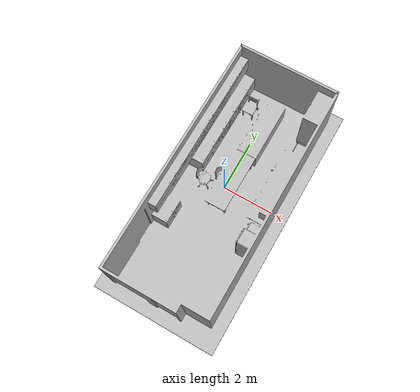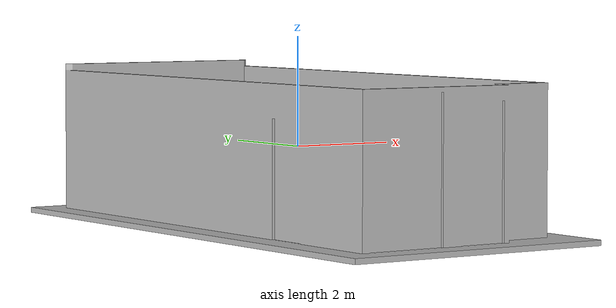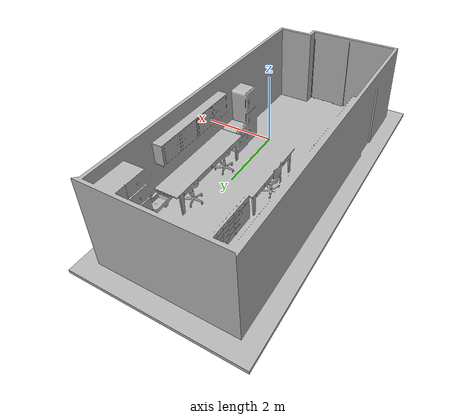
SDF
<?xml version='1.0'?>
<sdf version='1.7'>
  <model name='room912new'>
    <model name='room912'>
      <static>1</static>
      <link name='link'>
        <collision name='collision'>
          <geometry>
            <mesh>
              <uri>model://room912/meshes/room912.stl</uri>
            </mesh>
          </geometry>
        </collision>
        <visual name='visual'>
          <geometry>
            <mesh>
              <uri>model://room912/meshes/room912.stl</uri>
            </mesh>
          </geometry>
        </visual>
      </link>
      <pose>0 0 2e-06 1.57117 -0 0</pose>
    </model>
    <static>0</static>
    <allow_auto_disable>1</allow_auto_disable>
  </model>
</sdf>
